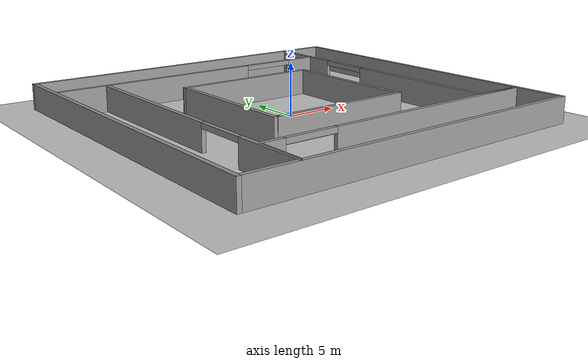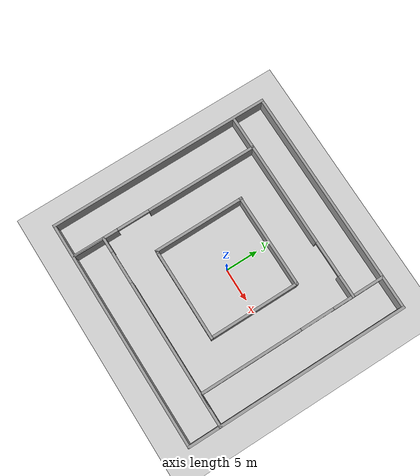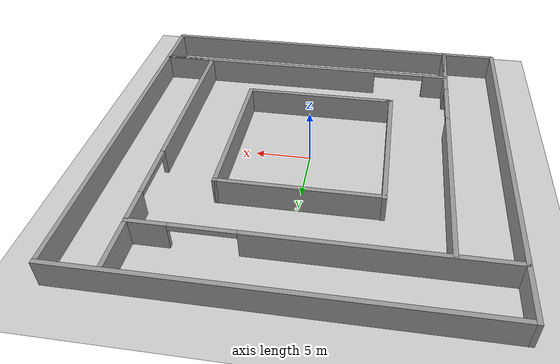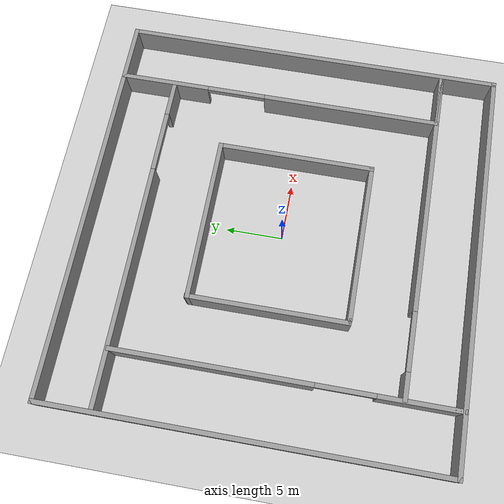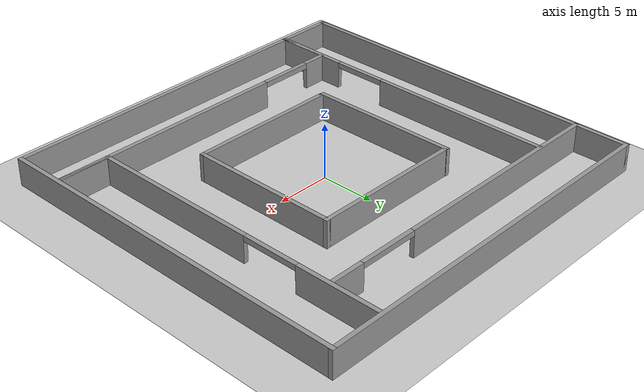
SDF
<sdf version="1.6">
 <world name="default">
  <light name="sun" type="directional">
   <pose>0 0 10 0 -0 0</pose>
   <diffuse>0.8 0.8 0.8 1</diffuse>
   <specular>0.2 0.2 0.2 1</specular>
   <attenuation>
    <range>1000</range>
    <constant>0.9</constant>
    <linear>0.01</linear>
    <quadratic>0.001</quadratic>
   </attenuation>
   <direction>-0.5 0.1 -0.9</direction>
  </light>
  <model name="ground_plane">
   <static>1</static>
   <link name="link">
    <collision name="collision">
     <geometry><plane><normal>0 0 1</normal><size>100 100</size></plane></geometry>
     <surface><friction><ode><mu>100</mu><mu2>50</mu2></ode></friction></surface>
    </collision>
    <visual name="visual">
     <cast_shadows>0</cast_shadows>
     <geometry><plane><normal>0 0 1</normal><size>100 100</size></plane></geometry>
     <material>
      <script><uri>file://media/materials/scripts/gazebo.material</uri><name>Gazebo/Grey</name></script>
     </material>
    </visual>
   </link>
  </model>
  <gravity>0 0 -9.8</gravity>
  <magnetic_field>6e-06 2.3e-05 -4.2e-05</magnetic_field>
  <atmosphere type="adiabatic"/>
  <physics name="default_physics" default="0" type="ode">
   <max_step_size>0.001</max_step_size>
   <real_time_factor>1</real_time_factor>
   <real_time_update_rate>1000</real_time_update_rate>
  </physics>
  <scene><ambient>0.4 0.4 0.4 1</ambient><background>0.7 0.7 0.7 1</background><shadows>1</shadows></scene>
  <spherical_coordinates>
   <surface_model>EARTH_WGS84</surface_model>
   <latitude_deg>0</latitude_deg>
   <longitude_deg>0</longitude_deg>
   <elevation>0</elevation>
   <heading_deg>0</heading_deg>
  </spherical_coordinates>
  <model name="Map2">
   <pose>-0.077002 0.114252 0 0 -0 0</pose>
   <link name="Wall_10">
    <collision name="Wall_10_Collision">
     <geometry><box><size>34.2499 0.4 2.5</size></box></geometry>
     <pose>0 0 1.25 0 -0 0</pose>
    </collision>
    <visual name="Wall_10_Visual">
     <pose>0 0 1.25 0 -0 0</pose>
     <geometry><box><size>34.2499 0.4 2.5</size></box></geometry>
     <material>
      <script><uri>file://media/materials/scripts/gazebo.material</uri><name>Gazebo/Grey</name></script>
      <ambient>1 1 1 1</ambient>
     </material>
     <meta><layer>0</layer></meta>
    </visual>
    <pose>17.425 0 0 0 -0 1.5708</pose>
   </link>
   <link name="Wall_11">
    <collision name="Wall_11_Collision">
     <geometry><box><size>35.25 0.4 2.5</size></box></geometry>
     <pose>0 0 1.25 0 -0 0</pose>
    </collision>
    <visual name="Wall_11_Visual">
     <pose>0 0 1.25 0 -0 0</pose>
     <geometry><box><size>35.25 0.4 2.5</size></box></geometry>
     <material>
      <script><uri>file://media/materials/scripts/gazebo.material</uri><name>Gazebo/Grey</name></script>
      <ambient>1 1 1 1</ambient>
     </material>
     <meta><layer>0</layer></meta>
    </visual>
    <pose>0 16.925 0 0 -0 3.14159</pose>
   </link>
   <link name="Wall_12">
    <collision name="Wall_12_Collision">
     <geometry><box><size>34.2501 0.4 2.5</size></box></geometry>
     <pose>0 0 1.25 0 -0 0</pose>
    </collision>
    <visual name="Wall_12_Visual">
     <pose>0 0 1.25 0 -0 0</pose>
     <geometry><box><size>34.2501 0.4 2.5</size></box></geometry>
     <material>
      <script><uri>file://media/materials/scripts/gazebo.material</uri><name>Gazebo/Grey</name></script>
      <ambient>1 1 1 1</ambient>
     </material>
     <meta><layer>0</layer></meta>
    </visual>
    <pose>-17.425 0 0 0 0 -1.5708</pose>
   </link>
   <link name="Wall_2">
    <collision name="Wall_2_Collision">
     <geometry><box><size>14.4146 0.4 2.5</size></box></geometry>
     <pose>0 0 1.25 0 -0 0</pose>
    </collision>
    <visual name="Wall_2_Visual">
     <pose>0 0 1.25 0 -0 0</pose>
     <geometry><box><size>14.4146 0.4 2.5</size></box></geometry>
     <material>
      <script><uri>file://media/materials/scripts/gazebo.material</uri><name>Gazebo/Grey</name></script>
      <ambient>1 1 1 1</ambient>
     </material>
     <meta><layer>0</layer></meta>
    </visual>
    <pose>0.030167 6.662 0 0 -0 0</pose>
   </link>
   <link name="Wall_3">
    <collision name="Wall_3_Collision">
     <geometry><box><size>14 0.4 2.5</size></box></geometry>
     <pose>0 0 1.25 0 -0 0</pose>
    </collision>
    <visual name="Wall_3_Visual">
     <pose>0 0 1.25 0 -0 0</pose>
     <geometry><box><size>14 0.4 2.5</size></box></geometry>
     <material>
      <script><uri>file://media/materials/scripts/gazebo.material</uri><name>Gazebo/Grey</name></script>
      <ambient>1 1 1 1</ambient>
     </material>
     <meta><layer>0</layer></meta>
    </visual>
    <pose>7.037 -0.138 0 0 0 -1.5708</pose>
   </link>
   <link name="Wall_31">
    <pose>12.53 2.41 0 0 0 -1.5708</pose>
    <visual name="Wall_31_Visual_0">
     <pose>-10.5921 0 1.25 0 -0 0</pose>
     <geometry><box><size>8.0656 0.4 2.5</size></box></geometry>
     <material>
      <script><uri>file://media/materials/scripts/gazebo.material</uri><name>Gazebo/Grey</name></script>
      <ambient>1 1 1 1</ambient>
     </material>
     <meta><layer>0</layer></meta>
    </visual>
    <collision name="Wall_31_Collision_0">
     <geometry><box><size>8.0656 0.4 2.5</size></box></geometry>
     <pose>-10.5921 0 1.25 0 -0 0</pose>
    </collision>
    <visual name="Wall_31_Visual_1">
     <pose>6.6578 0 1.25 0 -0 0</pose>
     <geometry><box><size>15.9343 0.4 2.5</size></box></geometry>
     <material>
      <script><uri>file://media/materials/scripts/gazebo.material</uri><name>Gazebo/Grey</name></script>
      <ambient>1 1 1 1</ambient>
     </material>
     <meta><layer>0</layer></meta>
    </visual>
    <collision name="Wall_31_Collision_1">
     <geometry><box><size>15.9343 0.4 2.5</size></box></geometry>
     <pose>6.6578 0 1.25 0 -0 0</pose>
    </collision>
    <visual name="Wall_31_Visual_2">
     <pose>-3.93433 0 2.25 0 -0 0</pose>
     <geometry><box><size>5.25 0.4 0.5</size></box></geometry>
     <material>
      <script><uri>file://media/materials/scripts/gazebo.material</uri><name>Gazebo/Grey</name></script>
      <ambient>1 1 1 1</ambient>
     </material>
     <meta><layer>0</layer></meta>
    </visual>
    <collision name="Wall_31_Collision_2">
     <geometry><box><size>5.25 0.4 0.5</size></box></geometry>
     <pose>-3.93433 0 2.25 0 -0 0</pose>
    </collision>
   </link>
   <link name="Wall_32">
    <collision name="Wall_32_Collision">
     <geometry><box><size>5.00272 0.15 2.5</size></box></geometry>
     <pose>0 0 1.25 0 -0 0</pose>
    </collision>
    <visual name="Wall_32_Visual">
     <pose>0 0 1.25 0 -0 0</pose>
     <geometry><box><size>5.00272 0.15 2.5</size></box></geometry>
     <material>
      <script><uri>file://media/materials/scripts/gazebo.material</uri><name>Gazebo/Grey</name></script>
      <ambient>1 1 1 1</ambient>
     </material>
     <meta><layer>0</layer></meta>
    </visual>
    <pose>14.955 -12.0962 0 0 0 -0.033459</pose>
   </link>
   <link name="Wall_33">
    <pose>2.58 -12.1232 0 0 -0 3.14159</pose>
    <visual name="Wall_33_Visual_0">
     <pose>-3.69939 0 1.25 0 -0 0</pose>
     <geometry><box><size>22.6009 0.4 2.5</size></box></geometry>
     <material>
      <script><uri>file://media/materials/scripts/gazebo.material</uri><name>Gazebo/Grey</name></script>
      <ambient>1 1 1 1</ambient>
     </material>
     <meta><layer>0</layer></meta>
    </visual>
    <collision name="Wall_33_Collision_0">
     <geometry><box><size>22.6009 0.4 2.5</size></box></geometry>
     <pose>-3.69939 0 1.25 0 -0 0</pose>
    </collision>
    <visual name="Wall_33_Visual_1">
     <pose>13.8004 0 1.25 0 -0 0</pose>
     <geometry><box><size>2.39878 0.4 2.5</size></box></geometry>
     <material>
      <script><uri>file://media/materials/scripts/gazebo.material</uri><name>Gazebo/Grey</name></script>
      <ambient>1 1 1 1</ambient>
     </material>
     <meta><layer>0</layer></meta>
    </visual>
    <collision name="Wall_33_Collision_1">
     <geometry><box><size>2.39878 0.4 2.5</size></box></geometry>
     <pose>13.8004 0 1.25 0 -0 0</pose>
    </collision>
    <visual name="Wall_33_Visual_2">
     <pose>10.1011 0 2.25 0 -0 0</pose>
     <geometry><box><size>5 0.4 0.5</size></box></geometry>
     <material>
      <script><uri>file://media/materials/scripts/gazebo.material</uri><name>Gazebo/Grey</name></script>
      <ambient>1 1 1 1</ambient>
     </material>
     <meta><layer>0</layer></meta>
    </visual>
    <collision name="Wall_33_Collision_2">
     <geometry><box><size>5 0.4 0.5</size></box></geometry>
     <pose>10.1011 0 2.25 0 -0 0</pose>
    </collision>
   </link>
   <link name="Wall_34">
    <collision name="Wall_34_Collision">
     <geometry><box><size>4.83798 0.15 2.5</size></box></geometry>
     <pose>0 0 1.25 0 -0 0</pose>
    </collision>
    <visual name="Wall_34_Visual">
     <pose>0 0 1.25 0 -0 0</pose>
     <geometry><box><size>4.83798 0.15 2.5</size></box></geometry>
     <material>
      <script><uri>file://media/materials/scripts/gazebo.material</uri><name>Gazebo/Grey</name></script>
      <ambient>1 1 1 1</ambient>
     </material>
     <meta><layer>0</layer></meta>
    </visual>
    <pose>-12.2471 -14.5212 0 0 0 -1.58234</pose>
   </link>
   <link name="Wall_37">
    <pose>-12.3282 -2.44 0 0 -0 1.5708</pose>
    <visual name="Wall_37_Visual_0">
     <pose>-11.0407 0 1.25 0 -0 0</pose>
     <geometry><box><size>7.16881 0.4 2.5</size></box></geometry>
     <material>
      <script><uri>file://media/materials/scripts/gazebo.material</uri><name>Gazebo/Grey</name></script>
      <ambient>1 1 1 1</ambient>
     </material>
     <meta><layer>0</layer></meta>
    </visual>
    <collision name="Wall_37_Collision_0">
     <geometry><box><size>7.16881 0.4 2.5</size></box></geometry>
     <pose>-11.0407 0 1.25 0 -0 0</pose>
    </collision>
    <visual name="Wall_37_Visual_1">
     <pose>6.08441 0 1.25 0 -0 0</pose>
     <geometry><box><size>17.0813 0.4 2.5</size></box></geometry>
     <material>
      <script><uri>file://media/materials/scripts/gazebo.material</uri><name>Gazebo/Grey</name></script>
      <ambient>1 1 1 1</ambient>
     </material>
     <meta><layer>0</layer></meta>
    </visual>
    <collision name="Wall_37_Collision_1">
     <geometry><box><size>17.0813 0.4 2.5</size></box></geometry>
     <pose>6.08441 0 1.25 0 -0 0</pose>
    </collision>
    <visual name="Wall_37_Visual_2">
     <pose>-4.95626 0 2.25 0 -0 0</pose>
     <geometry><box><size>5 0.4 0.5</size></box></geometry>
     <material>
      <script><uri>file://media/materials/scripts/gazebo.material</uri><name>Gazebo/Grey</name></script>
      <ambient>1 1 1 1</ambient>
     </material>
     <meta><layer>0</layer></meta>
    </visual>
    <collision name="Wall_37_Collision_2">
     <geometry><box><size>5 0.4 0.5</size></box></geometry>
     <pose>-4.95626 0 2.25 0 -0 0</pose>
    </collision>
   </link>
   <link name="Wall_39">
    <pose>-2.40489 12.1074 0 0 -0 0</pose>
    <visual name="Wall_39_Visual_0">
     <pose>-4.49486 0 1.25 0 -0 0</pose>
     <geometry><box><size>21.2603 0.4 2.5</size></box></geometry>
     <material>
      <script><uri>file://media/materials/scripts/gazebo.material</uri><name>Gazebo/Grey</name></script>
      <ambient>1 1 1 1</ambient>
     </material>
     <meta><layer>0</layer></meta>
    </visual>
    <collision name="Wall_39_Collision_0">
     <geometry><box><size>21.2603 0.4 2.5</size></box></geometry>
     <pose>-4.49486 0 1.25 0 -0 0</pose>
    </collision>
    <visual name="Wall_39_Visual_1">
     <pose>13.3801 0 1.25 0 -0 0</pose>
     <geometry><box><size>3.48971 0.4 2.5</size></box></geometry>
     <material>
      <script><uri>file://media/materials/scripts/gazebo.material</uri><name>Gazebo/Grey</name></script>
      <ambient>1 1 1 1</ambient>
     </material>
     <meta><layer>0</layer></meta>
    </visual>
    <collision name="Wall_39_Collision_1">
     <geometry><box><size>3.48971 0.4 2.5</size></box></geometry>
     <pose>13.3801 0 1.25 0 -0 0</pose>
    </collision>
    <visual name="Wall_39_Visual_2">
     <pose>8.88529 0 2.25 0 -0 0</pose>
     <geometry><box><size>5.5 0.4 0.5</size></box></geometry>
     <material>
      <script><uri>file://media/materials/scripts/gazebo.material</uri><name>Gazebo/Grey</name></script>
      <ambient>1 1 1 1</ambient>
     </material>
     <meta><layer>0</layer></meta>
    </visual>
    <collision name="Wall_39_Collision_2">
     <geometry><box><size>5.5 0.4 0.5</size></box></geometry>
     <pose>8.88529 0 2.25 0 -0 0</pose>
    </collision>
   </link>
   <link name="Wall_4">
    <collision name="Wall_4_Collision">
     <geometry><box><size>14.0001 0.4 2.5</size></box></geometry>
     <pose>0 0 1.25 0 -0 0</pose>
    </collision>
    <visual name="Wall_4_Visual">
     <pose>0 0 1.25 0 -0 0</pose>
     <geometry><box><size>14.0001 0.4 2.5</size></box></geometry>
     <material>
      <script><uri>file://media/materials/scripts/gazebo.material</uri><name>Gazebo/Grey</name></script>
      <ambient>1 1 1 1</ambient>
     </material>
     <meta><layer>0</layer></meta>
    </visual>
    <pose>0.237 -6.938 0 0 -0 3.14159</pose>
   </link>
   <link name="Wall_5">
    <collision name="Wall_5_Collision">
     <geometry><box><size>0.25 0.15 2.5</size></box></geometry>
     <pose>0 0 1.25 0 -0 0</pose>
    </collision>
    <visual name="Wall_5_Visual">
     <pose>0 0 1.25 0 -0 0</pose>
     <geometry><box><size>0.25 0.15 2.5</size></box></geometry>
     <material>
      <script><uri>file://media/materials/scripts/gazebo.material</uri><name>Gazebo/Grey</name></script>
      <ambient>1 1 1 1</ambient>
     </material>
     <meta><layer>0</layer></meta>
    </visual>
    <pose>-6.61306 -6.93822 0 0 0 -3.1372</pose>
   </link>
   <link name="Wall_6">
    <collision name="Wall_6_Collision">
     <geometry><box><size>0.413554 0.15 2.5</size></box></geometry>
     <pose>0 0 1.25 0 -0 0</pose>
    </collision>
    <visual name="Wall_6_Visual">
     <pose>0 0 1.25 0 -0 0</pose>
     <geometry><box><size>0.413554 0.15 2.5</size></box></geometry>
     <material>
      <script><uri>file://media/materials/scripts/gazebo.material</uri><name>Gazebo/Grey</name></script>
      <ambient>1 1 1 1</ambient>
     </material>
     <meta><layer>0</layer></meta>
    </visual>
    <pose>-6.79489 -6.93822 0 0 -0 3.13992</pose>
   </link>
   <link name="Wall_7">
    <collision name="Wall_7_Collision">
     <geometry><box><size>14.0001 0.4 2.5</size></box></geometry>
     <pose>0 0 1.25 0 -0 0</pose>
    </collision>
    <visual name="Wall_7_Visual">
     <pose>0 0 1.25 0 -0 0</pose>
     <geometry><box><size>14.0001 0.4 2.5</size></box></geometry>
     <material>
      <script><uri>file://media/materials/scripts/gazebo.material</uri><name>Gazebo/Grey</name></script>
      <ambient>1 1 1 1</ambient>
     </material>
     <meta><layer>0</layer></meta>
    </visual>
    <pose>-6.95167 -0.097084 0 0 -0 1.57447</pose>
   </link>
   <link name="Wall_9">
    <collision name="Wall_9_Collision">
     <geometry><box><size>35.25 0.4 2.5</size></box></geometry>
     <pose>0 0 1.25 0 -0 0</pose>
    </collision>
    <visual name="Wall_9_Visual">
     <pose>0 0 1.25 0 -0 0</pose>
     <geometry><box><size>35.25 0.4 2.5</size></box></geometry>
     <material>
      <script><uri>file://media/materials/scripts/gazebo.material</uri><name>Gazebo/Grey</name></script>
      <ambient>1 1 1 1</ambient>
     </material>
     <meta><layer>0</layer></meta>
    </visual>
    <pose>0 -16.925 0 0 -0 0</pose>
   </link>
   <static>1</static>
  </model>
 </world>
</sdf>
